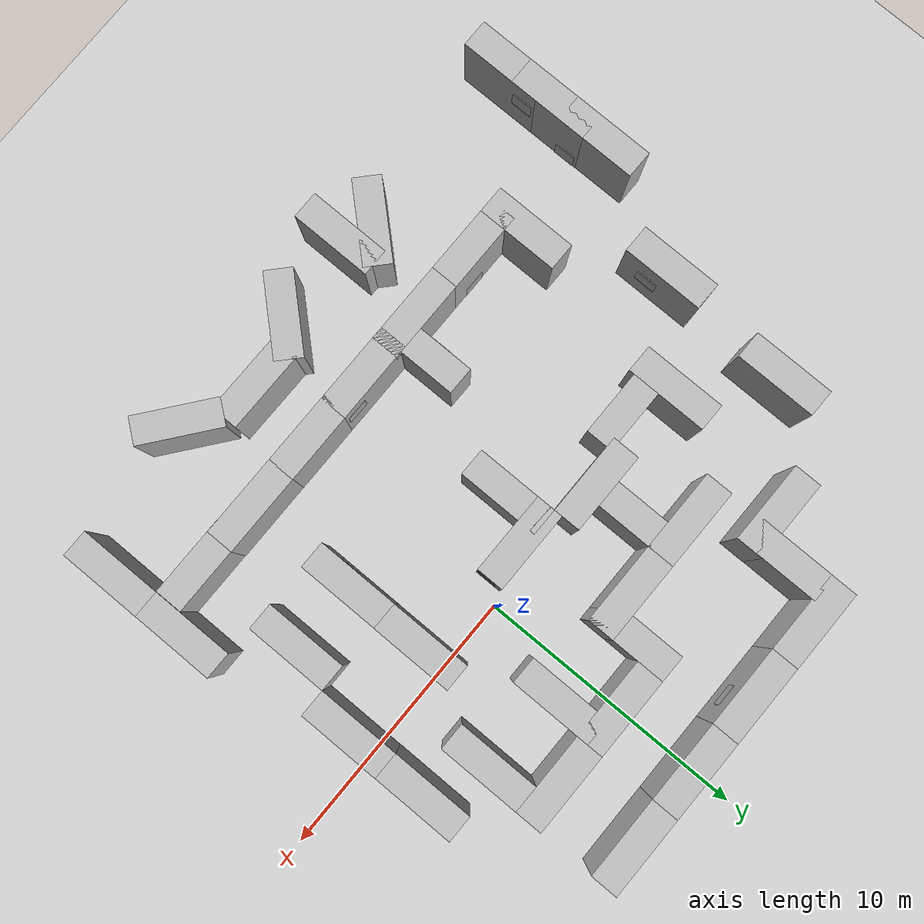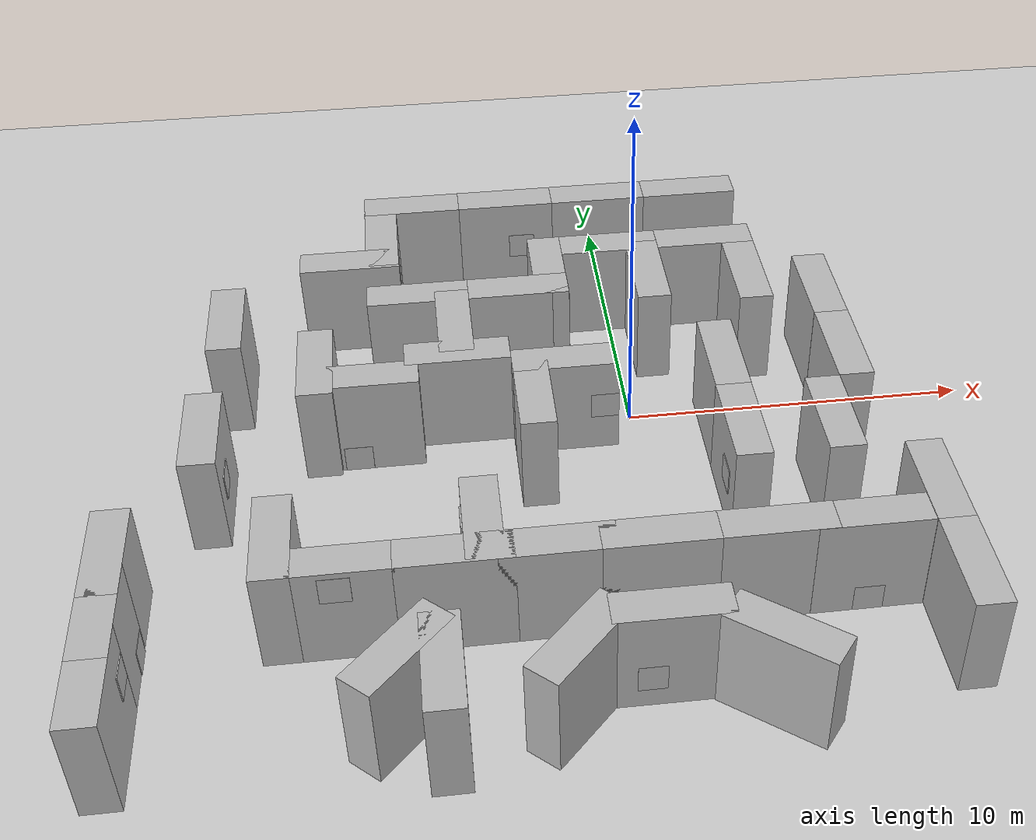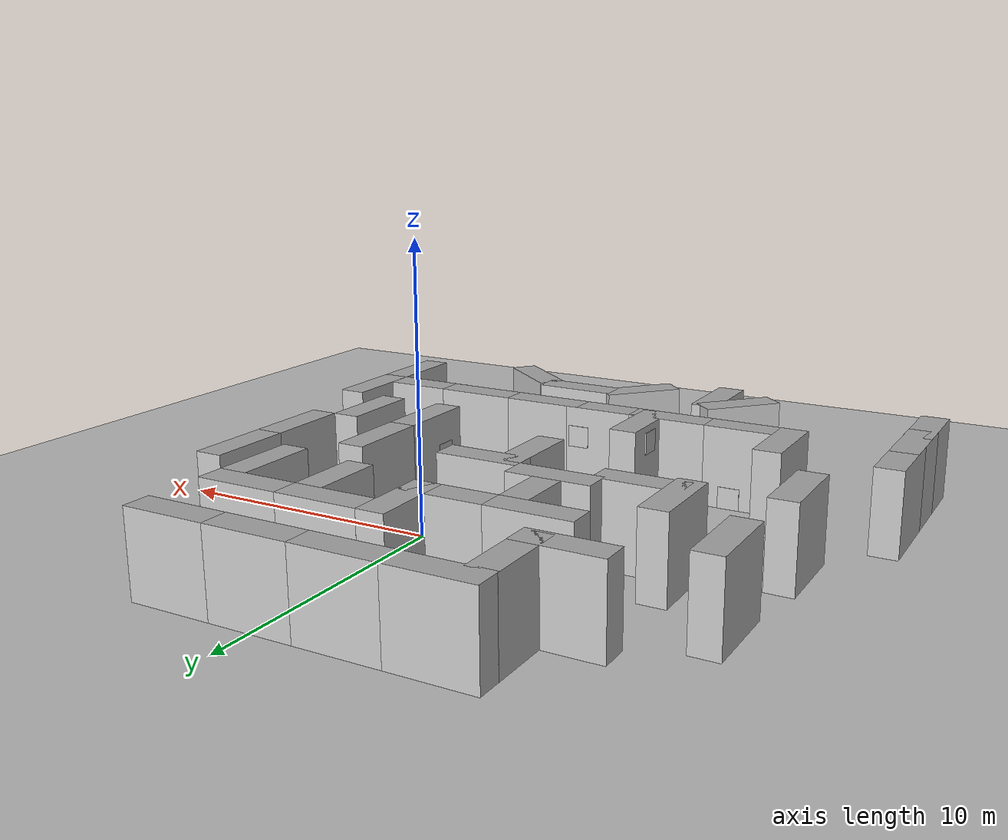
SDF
<sdf version="1.5">
 <world name="default">
  <model name="ground_plane">
   <static>1</static>
   <link name="link">
    <collision name="collision">
     <geometry><plane><normal>0 0 1</normal><size>100 100</size></plane></geometry>
     <surface><friction><ode><mu>100</mu><mu2>50</mu2></ode></friction></surface>
    </collision>
    <visual name="visual">
     <cast_shadows>0</cast_shadows>
     <geometry><plane><normal>0 0 1</normal><size>100 100</size></plane></geometry>
     <material>
      <script><uri>file://media/materials/scripts/gazebo.material</uri><name>Gazebo/Grey</name></script>
     </material>
    </visual>
   </link>
  </model>
  <model name="brick_box_3x1x3_0">
   <static>1</static>
   <link name="chassis">
    <pose>0 0 1.5 0 -0 0</pose>
    <collision name="collision"><geometry><box><size>3 1 3</size></box></geometry></collision>
    <visual name="visual">
     <geometry><mesh><uri>model://brick_box_3x1x3/meshes/simple_box.dae</uri><scale>3 1 3</scale></mesh></geometry>
     <material>
      <script>
       <uri>model://brick_box_3x1x3/materials/scripts</uri>
       <uri>model://brick_box_3x1x3/materials/textures</uri>
       <name>BrickBox/Diffuse</name>
      </script>
     </material>
    </visual>
   </link>
   <pose>3 8 0 0 -0 0</pose>
  </model>
  <model name="brick_box_3x1x3_1">
   <static>1</static>
   <link name="chassis">
    <pose>0 0 1.5 0 -0 0</pose>
    <collision name="collision"><geometry><box><size>3 1 3</size></box></geometry></collision>
    <visual name="visual">
     <geometry><mesh><uri>model://brick_box_3x1x3/meshes/simple_box.dae</uri><scale>3 1 3</scale></mesh></geometry>
     <material>
      <script>
       <uri>model://brick_box_3x1x3/materials/scripts</uri>
       <uri>model://brick_box_3x1x3/materials/textures</uri>
       <name>BrickBox/Diffuse</name>
      </script>
     </material>
    </visual>
   </link>
   <pose>3 5 0 0 -0 0</pose>
  </model>
  <model name="brick_box_3x1x3_2">
   <static>1</static>
   <link name="chassis">
    <pose>0 0 1.5 0 -0 0</pose>
    <collision name="collision"><geometry><box><size>3 1 3</size></box></geometry></collision>
    <visual name="visual">
     <geometry><mesh><uri>model://brick_box_3x1x3/meshes/simple_box.dae</uri><scale>3 1 3</scale></mesh></geometry>
     <material>
      <script>
       <uri>model://brick_box_3x1x3/materials/scripts</uri>
       <uri>model://brick_box_3x1x3/materials/textures</uri>
       <name>BrickBox/Diffuse</name>
      </script>
     </material>
    </visual>
   </link>
   <pose>0 5 0 0 -0 0</pose>
  </model>
  <model name="brick_box_3x1x3_3">
   <static>1</static>
   <link name="chassis">
    <pose>0 0 1.5 0 -0 0</pose>
    <collision name="collision"><geometry><box><size>3 1 3</size></box></geometry></collision>
    <visual name="visual">
     <geometry><mesh><uri>model://brick_box_3x1x3/meshes/simple_box.dae</uri><scale>3 1 3</scale></mesh></geometry>
     <material>
      <script>
       <uri>model://brick_box_3x1x3/materials/scripts</uri>
       <uri>model://brick_box_3x1x3/materials/textures</uri>
       <name>BrickBox/Diffuse</name>
      </script>
     </material>
    </visual>
   </link>
   <pose>0 8 0 0 -0 0</pose>
  </model>
  <model name="brick_box_3x1x3_4">
   <static>1</static>
   <link name="chassis">
    <pose>0 0 1.5 0 -0 0</pose>
    <collision name="collision"><geometry><box><size>3 1 3</size></box></geometry></collision>
    <visual name="visual">
     <geometry><mesh><uri>model://brick_box_3x1x3/meshes/simple_box.dae</uri><scale>3 1 3</scale></mesh></geometry>
     <material>
      <script>
       <uri>model://brick_box_3x1x3/materials/scripts</uri>
       <uri>model://brick_box_3x1x3/materials/textures</uri>
       <name>BrickBox/Diffuse</name>
      </script>
     </material>
    </visual>
   </link>
   <pose>-3 8 0 0 -0 0</pose>
  </model>
  <model name="brick_box_3x1x3_5">
   <static>1</static>
   <link name="chassis">
    <pose>0 0 1.5 0 -0 0</pose>
    <collision name="collision"><geometry><box><size>3 1 3</size></box></geometry></collision>
    <visual name="visual">
     <geometry><mesh><uri>model://brick_box_3x1x3/meshes/simple_box.dae</uri><scale>3 1 3</scale></mesh></geometry>
     <material>
      <script>
       <uri>model://brick_box_3x1x3/materials/scripts</uri>
       <uri>model://brick_box_3x1x3/materials/textures</uri>
       <name>BrickBox/Diffuse</name>
      </script>
     </material>
    </visual>
   </link>
   <pose>-6 8 0 0 -0 0</pose>
  </model>
  <model name="brick_box_3x1x3_6">
   <static>1</static>
   <link name="chassis">
    <pose>0 0 1.5 0 -0 0</pose>
    <collision name="collision"><geometry><box><size>3 1 3</size></box></geometry></collision>
    <visual name="visual">
     <geometry><mesh><uri>model://brick_box_3x1x3/meshes/simple_box.dae</uri><scale>3 1 3</scale></mesh></geometry>
     <material>
      <script>
       <uri>model://brick_box_3x1x3/materials/scripts</uri>
       <uri>model://brick_box_3x1x3/materials/textures</uri>
       <name>BrickBox/Diffuse</name>
      </script>
     </material>
    </visual>
   </link>
   <pose>-7.00719 6.10957 0 0 -0 1.56927</pose>
  </model>
  <model name="brick_box_3x1x3_6_clone">
   <static>1</static>
   <link name="chassis">
    <pose>0 0 1.5 0 -0 0</pose>
    <collision name="collision"><geometry><box><size>3 1 3</size></box></geometry></collision>
    <visual name="visual">
     <geometry><mesh><uri>model://brick_box_3x1x3/meshes/simple_box.dae</uri><scale>3 1 3</scale></mesh></geometry>
     <material>
      <script>
       <uri>model://brick_box_3x1x3/materials/scripts</uri>
       <uri>model://brick_box_3x1x3/materials/textures</uri>
       <name>BrickBox/Diffuse</name>
      </script>
     </material>
    </visual>
   </link>
   <pose>-2 4 0 0 -0 1.56927</pose>
  </model>
  <model name="brick_box_3x1x3_4_clone">
   <static>1</static>
   <link name="chassis">
    <pose>0 0 1.5 0 -0 0</pose>
    <collision name="collision"><geometry><box><size>3 1 3</size></box></geometry></collision>
    <visual name="visual">
     <geometry><mesh><uri>model://brick_box_3x1x3/meshes/simple_box.dae</uri><scale>3 1 3</scale></mesh></geometry>
     <material>
      <script>
       <uri>model://brick_box_3x1x3/materials/scripts</uri>
       <uri>model://brick_box_3x1x3/materials/textures</uri>
       <name>BrickBox/Diffuse</name>
      </script>
     </material>
    </visual>
   </link>
   <pose>-3 3 0 0 -0 0</pose>
  </model>
  <model name="brick_box_3x1x3_4_clone_clone">
   <static>1</static>
   <link name="chassis">
    <pose>0 0 1.5 0 -0 0</pose>
    <collision name="collision"><geometry><box><size>3 1 3</size></box></geometry></collision>
    <visual name="visual">
     <geometry><mesh><uri>model://brick_box_3x1x3/meshes/simple_box.dae</uri><scale>3 1 3</scale></mesh></geometry>
     <material>
      <script>
       <uri>model://brick_box_3x1x3/materials/scripts</uri>
       <uri>model://brick_box_3x1x3/materials/textures</uri>
       <name>BrickBox/Diffuse</name>
      </script>
     </material>
    </visual>
   </link>
   <pose>-8 5 0 0 -0 0</pose>
  </model>
  <model name="brick_box_3x1x3_4_clone_clone_0">
   <static>1</static>
   <link name="chassis">
    <pose>0 0 1.5 0 -0 0</pose>
    <collision name="collision"><geometry><box><size>3 1 3</size></box></geometry></collision>
    <visual name="visual">
     <geometry><mesh><uri>model://brick_box_3x1x3/meshes/simple_box.dae</uri><scale>3 1 3</scale></mesh></geometry>
     <material>
      <script>
       <uri>model://brick_box_3x1x3/materials/scripts</uri>
       <uri>model://brick_box_3x1x3/materials/textures</uri>
       <name>BrickBox/Diffuse</name>
      </script>
     </material>
    </visual>
   </link>
   <pose>-6 3 0 0 -0 0</pose>
  </model>
  <model name="brick_box_3x1x3_1_clone">
   <static>1</static>
   <link name="chassis">
    <pose>0 0 1.5 0 -0 0</pose>
    <collision name="collision"><geometry><box><size>3 1 3</size></box></geometry></collision>
    <visual name="visual">
     <geometry><mesh><uri>model://brick_box_3x1x3/meshes/simple_box.dae</uri><scale>3 1 3</scale></mesh></geometry>
     <material>
      <script>
       <uri>model://brick_box_3x1x3/materials/scripts</uri>
       <uri>model://brick_box_3x1x3/materials/textures</uri>
       <name>BrickBox/Diffuse</name>
      </script>
     </material>
    </visual>
   </link>
   <pose>-7.61871 -0.795439 0 0 -0 0</pose>
  </model>
  <model name="brick_box_3x1x3_1_clone_clone">
   <static>1</static>
   <link name="chassis">
    <pose>0 0 1.5 0 -0 0</pose>
    <collision name="collision"><geometry><box><size>3 1 3</size></box></geometry></collision>
    <visual name="visual">
     <geometry><mesh><uri>model://brick_box_3x1x3/meshes/simple_box.dae</uri><scale>3 1 3</scale></mesh></geometry>
     <material>
      <script>
       <uri>model://brick_box_3x1x3/materials/scripts</uri>
       <uri>model://brick_box_3x1x3/materials/textures</uri>
       <name>BrickBox/Diffuse</name>
      </script>
     </material>
    </visual>
   </link>
   <pose>-5 0 0 0 -0 0</pose>
  </model>
  <model name="brick_box_3x1x3_1_clone_clone_clone">
   <static>1</static>
   <link name="chassis">
    <pose>0 0 1.5 0 -0 0</pose>
    <collision name="collision"><geometry><box><size>3 1 3</size></box></geometry></collision>
    <visual name="visual">
     <geometry><mesh><uri>model://brick_box_3x1x3/meshes/simple_box.dae</uri><scale>3 1 3</scale></mesh></geometry>
     <material>
      <script>
       <uri>model://brick_box_3x1x3/materials/scripts</uri>
       <uri>model://brick_box_3x1x3/materials/textures</uri>
       <name>BrickBox/Diffuse</name>
      </script>
     </material>
    </visual>
   </link>
   <pose>-2 -0.680933 0 0 -0 0</pose>
  </model>
  <model name="brick_box_3x1x3_6_clone_0">
   <static>1</static>
   <link name="chassis">
    <pose>0 0 1.5 0 -0 0</pose>
    <collision name="collision"><geometry><box><size>3 1 3</size></box></geometry></collision>
    <visual name="visual">
     <geometry><mesh><uri>model://brick_box_3x1x3/meshes/simple_box.dae</uri><scale>3 1 3</scale></mesh></geometry>
     <material>
      <script>
       <uri>model://brick_box_3x1x3/materials/scripts</uri>
       <uri>model://brick_box_3x1x3/materials/textures</uri>
       <name>BrickBox/Diffuse</name>
      </script>
     </material>
    </visual>
   </link>
   <pose>-5 1.49506 0 0 -0 1.56927</pose>
  </model>
  <model name="brick_box_3x1x3_6_clone_0_clone">
   <static>1</static>
   <link name="chassis">
    <pose>0 0 1.5 0 -0 0</pose>
    <collision name="collision"><geometry><box><size>3 1 3</size></box></geometry></collision>
    <visual name="visual">
     <geometry><mesh><uri>model://brick_box_3x1x3/meshes/simple_box.dae</uri><scale>3 1 3</scale></mesh></geometry>
     <material>
      <script>
       <uri>model://brick_box_3x1x3/materials/scripts</uri>
       <uri>model://brick_box_3x1x3/materials/textures</uri>
       <name>BrickBox/Diffuse</name>
      </script>
     </material>
    </visual>
   </link>
   <pose>1 3.42288 0 0 -0 1.56927</pose>
  </model>
  <model name="brick_box_3x1x3_6_clone_1">
   <static>1</static>
   <link name="chassis">
    <pose>0 0 1.5 0 -0 0</pose>
    <collision name="collision"><geometry><box><size>3 1 3</size></box></geometry></collision>
    <visual name="visual">
     <geometry><mesh><uri>model://brick_box_3x1x3/meshes/simple_box.dae</uri><scale>3 1 3</scale></mesh></geometry>
     <material>
      <script>
       <uri>model://brick_box_3x1x3/materials/scripts</uri>
       <uri>model://brick_box_3x1x3/materials/textures</uri>
       <name>BrickBox/Diffuse</name>
      </script>
     </material>
    </visual>
   </link>
   <pose>-9 0 0 0 -0 1.56927</pose>
  </model>
  <model name="brick_box_3x1x3_6_clone_2">
   <static>1</static>
   <link name="chassis">
    <pose>0 0 1.5 0 -0 0</pose>
    <collision name="collision"><geometry><box><size>3 1 3</size></box></geometry></collision>
    <visual name="visual">
     <geometry><mesh><uri>model://brick_box_3x1x3/meshes/simple_box.dae</uri><scale>3 1 3</scale></mesh></geometry>
     <material>
      <script>
       <uri>model://brick_box_3x1x3/materials/scripts</uri>
       <uri>model://brick_box_3x1x3/materials/textures</uri>
       <name>BrickBox/Diffuse</name>
      </script>
     </material>
    </visual>
   </link>
   <pose>4 3 0 0 -0 1.56927</pose>
  </model>
  <model name="brick_box_3x1x3_1_clone_clone_clone_clone_clone">
   <static>1</static>
   <link name="chassis">
    <pose>0 0 1.5 0 -0 0</pose>
    <collision name="collision"><geometry><box><size>3 1 3</size></box></geometry></collision>
    <visual name="visual">
     <geometry><mesh><uri>model://brick_box_3x1x3/meshes/simple_box.dae</uri><scale>3 1 3</scale></mesh></geometry>
     <material>
      <script>
       <uri>model://brick_box_3x1x3/materials/scripts</uri>
       <uri>model://brick_box_3x1x3/materials/textures</uri>
       <name>BrickBox/Diffuse</name>
      </script>
     </material>
    </visual>
   </link>
   <pose>-8.49587 -8 0 0 -0 0</pose>
  </model>
  <model name="brick_box_3x1x3_1_clone_clone_clone_clone_clone_0">
   <static>1</static>
   <link name="chassis">
    <pose>0 0 1.5 0 -0 0</pose>
    <collision name="collision"><geometry><box><size>3 1 3</size></box></geometry></collision>
    <visual name="visual">
     <geometry><mesh><uri>model://brick_box_3x1x3/meshes/simple_box.dae</uri><scale>3 1 3</scale></mesh></geometry>
     <material>
      <script>
       <uri>model://brick_box_3x1x3/materials/scripts</uri>
       <uri>model://brick_box_3x1x3/materials/textures</uri>
       <name>BrickBox/Diffuse</name>
      </script>
     </material>
    </visual>
   </link>
   <pose>-5.55806 -8 0 0 -0 0</pose>
  </model>
  <model name="brick_box_3x1x3_1_clone_clone_clone_clone_clone_1">
   <static>1</static>
   <link name="chassis">
    <pose>0 0 1.5 0 -0 0</pose>
    <collision name="collision"><geometry><box><size>3 1 3</size></box></geometry></collision>
    <visual name="visual">
     <geometry><mesh><uri>model://brick_box_3x1x3/meshes/simple_box.dae</uri><scale>3 1 3</scale></mesh></geometry>
     <material>
      <script>
       <uri>model://brick_box_3x1x3/materials/scripts</uri>
       <uri>model://brick_box_3x1x3/materials/textures</uri>
       <name>BrickBox/Diffuse</name>
      </script>
     </material>
    </visual>
   </link>
   <pose>-3 -8 0 0 -0 0</pose>
  </model>
  <model name="brick_box_3x1x3_1_clone_clone_clone_clone_clone_2">
   <static>1</static>
   <link name="chassis">
    <pose>0 0 1.5 0 -0 0</pose>
    <collision name="collision"><geometry><box><size>3 1 3</size></box></geometry></collision>
    <visual name="visual">
     <geometry><mesh><uri>model://brick_box_3x1x3/meshes/simple_box.dae</uri><scale>3 1 3</scale></mesh></geometry>
     <material>
      <script>
       <uri>model://brick_box_3x1x3/materials/scripts</uri>
       <uri>model://brick_box_3x1x3/materials/textures</uri>
       <name>BrickBox/Diffuse</name>
      </script>
     </material>
    </visual>
   </link>
   <pose>-0.433734 -8 0 0 -0 0</pose>
  </model>
  <model name="brick_box_3x1x3_1_clone_clone_clone_clone_clone_3">
   <static>1</static>
   <link name="chassis">
    <pose>0 0 1.5 0 -0 0</pose>
    <collision name="collision"><geometry><box><size>3 1 3</size></box></geometry></collision>
    <visual name="visual">
     <geometry><mesh><uri>model://brick_box_3x1x3/meshes/simple_box.dae</uri><scale>3 1 3</scale></mesh></geometry>
     <material>
      <script>
       <uri>model://brick_box_3x1x3/materials/scripts</uri>
       <uri>model://brick_box_3x1x3/materials/textures</uri>
       <name>BrickBox/Diffuse</name>
      </script>
     </material>
    </visual>
   </link>
   <pose>2.54551 -8 0 0 -0 0</pose>
  </model>
  <model name="brick_box_3x1x3_1_clone_clone_clone_clone_clone_4">
   <static>1</static>
   <link name="chassis">
    <pose>0 0 1.5 0 -0 0</pose>
    <collision name="collision"><geometry><box><size>3 1 3</size></box></geometry></collision>
    <visual name="visual">
     <geometry><mesh><uri>model://brick_box_3x1x3/meshes/simple_box.dae</uri><scale>3 1 3</scale></mesh></geometry>
     <material>
      <script>
       <uri>model://brick_box_3x1x3/materials/scripts</uri>
       <uri>model://brick_box_3x1x3/materials/textures</uri>
       <name>BrickBox/Diffuse</name>
      </script>
     </material>
    </visual>
   </link>
   <pose>4.98932 -8.01047 0 0 -0 0</pose>
  </model>
  <model name="brick_box_3x1x3_6_clone_0_clone_0">
   <static>1</static>
   <link name="chassis">
    <pose>0 0 1.5 0 -0 0</pose>
    <collision name="collision"><geometry><box><size>3 1 3</size></box></geometry></collision>
    <visual name="visual">
     <geometry><mesh><uri>model://brick_box_3x1x3/meshes/simple_box.dae</uri><scale>3 1 3</scale></mesh></geometry>
     <material>
      <script>
       <uri>model://brick_box_3x1x3/materials/scripts</uri>
       <uri>model://brick_box_3x1x3/materials/textures</uri>
       <name>BrickBox/Diffuse</name>
      </script>
     </material>
    </visual>
   </link>
   <pose>-4.78193 -6.92335 0 0 -0 1.56927</pose>
  </model>
  <model name="brick_box_3x1x3_6_clone_0_clone_1">
   <static>1</static>
   <link name="chassis">
    <pose>0 0 1.5 0 -0 0</pose>
    <collision name="collision"><geometry><box><size>3 1 3</size></box></geometry></collision>
    <visual name="visual">
     <geometry><mesh><uri>model://brick_box_3x1x3/meshes/simple_box.dae</uri><scale>3 1 3</scale></mesh></geometry>
     <material>
      <script>
       <uri>model://brick_box_3x1x3/materials/scripts</uri>
       <uri>model://brick_box_3x1x3/materials/textures</uri>
       <name>BrickBox/Diffuse</name>
      </script>
     </material>
    </visual>
   </link>
   <pose>-3 -2 0 0 -0 1.56927</pose>
  </model>
  <model name="brick_box_3x1x3_6_clone_0_clone_2">
   <static>1</static>
   <link name="chassis">
    <pose>0 0 1.5 0 -0 0</pose>
    <collision name="collision"><geometry><box><size>3 1 3</size></box></geometry></collision>
    <visual name="visual">
     <geometry><mesh><uri>model://brick_box_3x1x3/meshes/simple_box.dae</uri><scale>3 1 3</scale></mesh></geometry>
     <material>
      <script>
       <uri>model://brick_box_3x1x3/materials/scripts</uri>
       <uri>model://brick_box_3x1x3/materials/textures</uri>
       <name>BrickBox/Diffuse</name>
      </script>
     </material>
    </visual>
   </link>
   <pose>2.50019 -1 0 0 -0 1.56927</pose>
  </model>
  <model name="brick_box_3x1x3_6_clone_0_clone_3">
   <static>1</static>
   <link name="chassis">
    <pose>0 0 1.5 0 -0 0</pose>
    <collision name="collision"><geometry><box><size>3 1 3</size></box></geometry></collision>
    <visual name="visual">
     <geometry><mesh><uri>model://brick_box_3x1x3/meshes/simple_box.dae</uri><scale>3 1 3</scale></mesh></geometry>
     <material>
      <script>
       <uri>model://brick_box_3x1x3/materials/scripts</uri>
       <uri>model://brick_box_3x1x3/materials/textures</uri>
       <name>BrickBox/Diffuse</name>
      </script>
     </material>
    </visual>
   </link>
   <pose>2.48978 -4 0 0 -0 1.56927</pose>
  </model>
  <model name="brick_box_3x1x3_6_clone_0_clone_4">
   <static>1</static>
   <link name="chassis">
    <pose>0 0 1.5 0 -0 0</pose>
    <collision name="collision"><geometry><box><size>3 1 3</size></box></geometry></collision>
    <visual name="visual">
     <geometry><mesh><uri>model://brick_box_3x1x3/meshes/simple_box.dae</uri><scale>3 1 3</scale></mesh></geometry>
     <material>
      <script>
       <uri>model://brick_box_3x1x3/materials/scripts</uri>
       <uri>model://brick_box_3x1x3/materials/textures</uri>
       <name>BrickBox/Diffuse</name>
      </script>
     </material>
    </visual>
   </link>
   <pose>5 -4 0 0 -0 1.56927</pose>
  </model>
  <model name="brick_box_3x1x3_6_clone_0_clone_5">
   <static>1</static>
   <link name="chassis">
    <pose>0 0 1.5 0 -0 0</pose>
    <collision name="collision"><geometry><box><size>3 1 3</size></box></geometry></collision>
    <visual name="visual">
     <geometry><mesh><uri>model://brick_box_3x1x3/meshes/simple_box.dae</uri><scale>3 1 3</scale></mesh></geometry>
     <material>
      <script>
       <uri>model://brick_box_3x1x3/materials/scripts</uri>
       <uri>model://brick_box_3x1x3/materials/textures</uri>
       <name>BrickBox/Diffuse</name>
      </script>
     </material>
    </visual>
   </link>
   <pose>6 -1 0 0 -0 1.56927</pose>
  </model>
  <model name="brick_box_3x1x3_6_clone_0_clone_6">
   <static>1</static>
   <link name="chassis">
    <pose>0 0 1.5 0 -0 0</pose>
    <collision name="collision"><geometry><box><size>3 1 3</size></box></geometry></collision>
    <visual name="visual">
     <geometry><mesh><uri>model://brick_box_3x1x3/meshes/simple_box.dae</uri><scale>3 1 3</scale></mesh></geometry>
     <material>
      <script>
       <uri>model://brick_box_3x1x3/materials/scripts</uri>
       <uri>model://brick_box_3x1x3/materials/textures</uri>
       <name>BrickBox/Diffuse</name>
      </script>
     </material>
    </visual>
   </link>
   <pose>6 2 0 0 -0 1.56927</pose>
  </model>
  <model name="brick_box_3x1x3_6_clone_0_clone_6_clone">
   <static>1</static>
   <link name="chassis">
    <pose>0 0 1.5 0 -0 0</pose>
    <collision name="collision"><geometry><box><size>3 1 3</size></box></geometry></collision>
    <visual name="visual">
     <geometry><mesh><uri>model://brick_box_3x1x3/meshes/simple_box.dae</uri><scale>3 1 3</scale></mesh></geometry>
     <material>
      <script>
       <uri>model://brick_box_3x1x3/materials/scripts</uri>
       <uri>model://brick_box_3x1x3/materials/textures</uri>
       <name>BrickBox/Diffuse</name>
      </script>
     </material>
    </visual>
   </link>
   <pose>7 -7 0 0 -0 1.56927</pose>
  </model>
  <model name="brick_box_3x1x3_6_clone_0_clone_6_clone_clone">
   <static>1</static>
   <link name="chassis">
    <pose>0 0 1.5 0 -0 0</pose>
    <collision name="collision"><geometry><box><size>3 1 3</size></box></geometry></collision>
    <visual name="visual">
     <geometry><mesh><uri>model://brick_box_3x1x3/meshes/simple_box.dae</uri><scale>3 1 3</scale></mesh></geometry>
     <material>
      <script>
       <uri>model://brick_box_3x1x3/materials/scripts</uri>
       <uri>model://brick_box_3x1x3/materials/textures</uri>
       <name>BrickBox/Diffuse</name>
      </script>
     </material>
    </visual>
   </link>
   <pose>-10 -7 0 0 -0 1.56927</pose>
  </model>
  <model name="brick_box_3x1x3_6_clone_0_clone_6_clone_clone_0">
   <static>1</static>
   <link name="chassis">
    <pose>0 0 1.5 0 -0 0</pose>
    <collision name="collision"><geometry><box><size>3 1 3</size></box></geometry></collision>
    <visual name="visual">
     <geometry><mesh><uri>model://brick_box_3x1x3/meshes/simple_box.dae</uri><scale>3 1 3</scale></mesh></geometry>
     <material>
      <script>
       <uri>model://brick_box_3x1x3/materials/scripts</uri>
       <uri>model://brick_box_3x1x3/materials/textures</uri>
       <name>BrickBox/Diffuse</name>
      </script>
     </material>
    </visual>
   </link>
   <pose>-12 -2.55136 0 0 -0 1.56927</pose>
  </model>
  <model name="brick_box_3x1x3_6_clone_0_clone_6_clone_clone_0_clone">
   <static>1</static>
   <link name="chassis">
    <pose>0 0 1.5 0 -0 0</pose>
    <collision name="collision"><geometry><box><size>3 1 3</size></box></geometry></collision>
    <visual name="visual">
     <geometry><mesh><uri>model://brick_box_3x1x3/meshes/simple_box.dae</uri><scale>3 1 3</scale></mesh></geometry>
     <material>
      <script>
       <uri>model://brick_box_3x1x3/materials/scripts</uri>
       <uri>model://brick_box_3x1x3/materials/textures</uri>
       <name>BrickBox/Diffuse</name>
      </script>
     </material>
    </visual>
   </link>
   <pose>-11.5925 2.40821 0 0 -0 1.56927</pose>
  </model>
  <model name="brick_box_3x1x3_6_clone_0_clone_6_clone_clone_0_clone_0">
   <static>1</static>
   <link name="chassis">
    <pose>0 0 1.5 0 -0 0</pose>
    <collision name="collision"><geometry><box><size>3 1 3</size></box></geometry></collision>
    <visual name="visual">
     <geometry><mesh><uri>model://brick_box_3x1x3/meshes/simple_box.dae</uri><scale>3 1 3</scale></mesh></geometry>
     <material>
      <script>
       <uri>model://brick_box_3x1x3/materials/scripts</uri>
       <uri>model://brick_box_3x1x3/materials/textures</uri>
       <name>BrickBox/Diffuse</name>
      </script>
     </material>
    </visual>
   </link>
   <pose>-2.81968 -11.2135 -0 0 -0 0.824357</pose>
  </model>
  <model name="brick_box_3x1x3_6_clone_0_clone_6_clone_clone_0_clone_0_clone_clone_0">
   <static>1</static>
   <link name="chassis">
    <pose>0 0 1.5 0 -0 0</pose>
    <collision name="collision"><geometry><box><size>3 1 3</size></box></geometry></collision>
    <visual name="visual">
     <geometry><mesh><uri>model://brick_box_3x1x3/meshes/simple_box.dae</uri><scale>3 1 3</scale></mesh></geometry>
     <material>
      <script>
       <uri>model://brick_box_3x1x3/materials/scripts</uri>
       <uri>model://brick_box_3x1x3/materials/textures</uri>
       <name>BrickBox/Diffuse</name>
      </script>
     </material>
    </visual>
   </link>
   <pose>-0.541851 -10.4768 0 0 0 -0.007092</pose>
  </model>
  <model name="brick_box_3x1x3_6_clone_0_clone_6_clone_clone_0_clone_0_clone_clone_2">
   <static>1</static>
   <link name="chassis">
    <pose>0 0 1.5 0 -0 0</pose>
    <collision name="collision"><geometry><box><size>3 1 3</size></box></geometry></collision>
    <visual name="visual">
     <geometry><mesh><uri>model://brick_box_3x1x3/meshes/simple_box.dae</uri><scale>3 1 3</scale></mesh></geometry>
     <material>
      <script>
       <uri>model://brick_box_3x1x3/materials/scripts</uri>
       <uri>model://brick_box_3x1x3/materials/textures</uri>
       <name>BrickBox/Diffuse</name>
      </script>
     </material>
    </visual>
   </link>
   <pose>2 -11.5506 -0 0 -0 2.47586</pose>
  </model>
  <model name="brick_box_3x1x3_6_clone_0_clone_6_clone_clone_0_clone_0_clone_clone_1_clone_1">
   <static>1</static>
   <link name="chassis">
    <pose>0 0 1.5 0 -0 0</pose>
    <collision name="collision"><geometry><box><size>3 1 3</size></box></geometry></collision>
    <visual name="visual">
     <geometry><mesh><uri>model://brick_box_3x1x3/meshes/simple_box.dae</uri><scale>3 1 3</scale></mesh></geometry>
     <material>
      <script>
       <uri>model://brick_box_3x1x3/materials/scripts</uri>
       <uri>model://brick_box_3x1x3/materials/textures</uri>
       <name>BrickBox/Diffuse</name>
      </script>
     </material>
    </visual>
   </link>
   <pose>-6 -11.5224 0 0 -0 1.56927</pose>
  </model>
  <model name="brick_box_3x1x3_6_clone_0_clone_6_clone_clone_0_clone_0_clone_0">
   <static>1</static>
   <link name="chassis">
    <pose>0 0 1.5 0 -0 0</pose>
    <collision name="collision"><geometry><box><size>3 1 3</size></box></geometry></collision>
    <visual name="visual">
     <geometry><mesh><uri>model://brick_box_3x1x3/meshes/simple_box.dae</uri><scale>3 1 3</scale></mesh></geometry>
     <material>
      <script>
       <uri>model://brick_box_3x1x3/materials/scripts</uri>
       <uri>model://brick_box_3x1x3/materials/textures</uri>
       <name>BrickBox/Diffuse</name>
      </script>
     </material>
    </visual>
   </link>
   <pose>-7 -11 -0 0 -0 0.824357</pose>
  </model>
  <model name="brick_box_3x1x3_6_clone_0_clone_6_clone_clone_0_clone_0_clone_clone_1_clone_clone">
   <static>1</static>
   <link name="chassis">
    <pose>0 0 1.5 0 -0 0</pose>
    <collision name="collision"><geometry><box><size>3 1 3</size></box></geometry></collision>
    <visual name="visual">
     <geometry><mesh><uri>model://brick_box_3x1x3/meshes/simple_box.dae</uri><scale>3 1 3</scale></mesh></geometry>
     <material>
      <script>
       <uri>model://brick_box_3x1x3/materials/scripts</uri>
       <uri>model://brick_box_3x1x3/materials/textures</uri>
       <name>BrickBox/Diffuse</name>
      </script>
     </material>
    </visual>
   </link>
   <pose>-14 -7 0 0 -0 1.56927</pose>
  </model>
  <model name="brick_box_3x1x3_6_clone_0_clone_6_clone_clone_0_clone_0_clone_clone_1_clone_clone_clone">
   <static>1</static>
   <link name="chassis">
    <pose>0 0 1.5 0 -0 0</pose>
    <collision name="collision"><geometry><box><size>3 1 3</size></box></geometry></collision>
    <visual name="visual">
     <geometry><mesh><uri>model://brick_box_3x1x3/meshes/simple_box.dae</uri><scale>3 1 3</scale></mesh></geometry>
     <material>
      <script>
       <uri>model://brick_box_3x1x3/materials/scripts</uri>
       <uri>model://brick_box_3x1x3/materials/textures</uri>
       <name>BrickBox/Diffuse</name>
      </script>
     </material>
    </visual>
   </link>
   <pose>-14 -9 0 0 -0 1.56927</pose>
  </model>
  <model name="brick_box_3x1x3_6_clone_0_clone_6_clone_clone_0_clone_0_clone_clone_1_clone_clone_clone_0">
   <static>1</static>
   <link name="chassis">
    <pose>0 0 1.5 0 -0 0</pose>
    <collision name="collision"><geometry><box><size>3 1 3</size></box></geometry></collision>
    <visual name="visual">
     <geometry><mesh><uri>model://brick_box_3x1x3/meshes/simple_box.dae</uri><scale>3 1 3</scale></mesh></geometry>
     <material>
      <script>
       <uri>model://brick_box_3x1x3/materials/scripts</uri>
       <uri>model://brick_box_3x1x3/materials/textures</uri>
       <name>BrickBox/Diffuse</name>
      </script>
     </material>
    </visual>
   </link>
   <pose>-14 -11 0 0 -0 1.56927</pose>
  </model>
  <model name="brick_box_3x1x3_6_clone_0_clone_6_clone_clone_1">
   <static>1</static>
   <link name="chassis">
    <pose>0 0 1.5 0 -0 0</pose>
    <collision name="collision"><geometry><box><size>3 1 3</size></box></geometry></collision>
    <visual name="visual">
     <geometry><mesh><uri>model://brick_box_3x1x3/meshes/simple_box.dae</uri><scale>3 1 3</scale></mesh></geometry>
     <material>
      <script>
       <uri>model://brick_box_3x1x3/materials/scripts</uri>
       <uri>model://brick_box_3x1x3/materials/textures</uri>
       <name>BrickBox/Diffuse</name>
      </script>
     </material>
    </visual>
   </link>
   <pose>7 -10 0 0 -0 1.56927</pose>
  </model>
  <model name="number1">
   <pose>-2.52166 7.88952 1.4824 0 -0 0</pose>
   <static>1</static>
   <link name="link">
    <visual name="visual">
     <geometry><mesh><uri>model://number1/meshes/number.dae</uri></mesh></geometry>
     <material>
      <script>
       <uri>model://number1/materials/scripts</uri>
       <uri>model://number1/materials/textures</uri>
       <name>Number/One</name>
      </script>
     </material>
    </visual>
   </link>
  </model>
  <model name="number2">
   <pose>-0.899916 -0.782511 1.52178 0 -0 0</pose>
   <static>1</static>
   <link name="link">
    <visual name="visual">
     <geometry><mesh><uri>model://number1/meshes/number.dae</uri></mesh></geometry>
     <material>
      <script>
       <uri>model://number2/materials/scripts</uri>
       <uri>model://number2/materials/textures</uri>
       <name>Number/Two</name>
      </script>
     </material>
    </visual>
   </link>
  </model>
  <model name="number3">
   <pose>2.36326 -4.47947 1.46512 0 -0 0</pose>
   <static>1</static>
   <link name="link">
    <visual name="visual">
     <geometry><mesh><uri>model://number1/meshes/number.dae</uri></mesh></geometry>
     <material>
      <script>
       <uri>model://number3/materials/scripts</uri>
       <uri>model://number3/materials/textures</uri>
       <name>Number/Three</name>
      </script>
     </material>
    </visual>
   </link>
  </model>
  <model name="number4">
   <pose>-1 -8 0.4 0 -0 0</pose>
   <static>1</static>
   <link name="link">
    <visual name="visual">
     <geometry><mesh><uri>model://number1/meshes/number.dae</uri></mesh></geometry>
     <material>
      <script>
       <uri>model://number4/materials/scripts</uri>
       <uri>model://number4/materials/textures</uri>
       <name>Number/Four</name>
      </script>
     </material>
    </visual>
   </link>
  </model>
  <model name="number4_0">
   <pose>-2 -7.87886 1.87014 0 -0 0</pose>
   <static>1</static>
   <link name="link">
    <visual name="visual">
     <geometry><mesh><uri>model://number1/meshes/number.dae</uri></mesh></geometry>
     <material>
      <script>
       <uri>model://number4/materials/scripts</uri>
       <uri>model://number4/materials/textures</uri>
       <name>Number/Four</name>
      </script>
     </material>
    </visual>
   </link>
  </model>
  <model name="number5">
   <pose>-8 -7.88739 0.4 0 -0 0</pose>
   <static>1</static>
   <link name="link">
    <visual name="visual">
     <geometry><mesh><uri>model://number1/meshes/number.dae</uri></mesh></geometry>
     <material>
      <script>
       <uri>model://number5/materials/scripts</uri>
       <uri>model://number5/materials/textures</uri>
       <name>Number/Five</name>
      </script>
     </material>
    </visual>
   </link>
  </model>
  <model name="number7">
   <pose>-11.8767 -3 1.51871 0 -0 0</pose>
   <static>1</static>
   <link name="link">
    <visual name="visual">
     <geometry><mesh><uri>model://number1/meshes/number.dae</uri></mesh></geometry>
     <material>
      <script>
       <uri>model://number7/materials/scripts</uri>
       <uri>model://number7/materials/textures</uri>
       <name>Number/Seven</name>
      </script>
     </material>
    </visual>
   </link>
  </model>
  <model name="number9">
   <pose>-1 -10.576 0.963225 0 -0 0</pose>
   <static>1</static>
   <link name="link">
    <visual name="visual">
     <geometry><mesh><uri>model://number1/meshes/number.dae</uri></mesh></geometry>
     <material>
      <script>
       <uri>model://number9/materials/scripts</uri>
       <uri>model://number9/materials/textures</uri>
       <name>Number/Nine</name>
      </script>
     </material>
    </visual>
   </link>
  </model>
  <model name="number2_0">
   <pose>5 -8.11371 0.4 0 -0 0</pose>
   <static>1</static>
   <link name="link">
    <visual name="visual">
     <geometry><mesh><uri>model://number1/meshes/number.dae</uri></mesh></geometry>
     <material>
      <script>
       <uri>model://number2/materials/scripts</uri>
       <uri>model://number2/materials/textures</uri>
       <name>Number/Two</name>
      </script>
     </material>
    </visual>
   </link>
  </model>
  <model name="number3_2">
   <pose>-13.8709 -10 1.74911 0 -0 0</pose>
   <static>1</static>
   <link name="link">
    <visual name="visual">
     <geometry><mesh><uri>model://number1/meshes/number.dae</uri></mesh></geometry>
     <material>
      <script>
       <uri>model://number3/materials/scripts</uri>
       <uri>model://number3/materials/textures</uri>
       <name>Number/Three</name>
      </script>
     </material>
    </visual>
   </link>
  </model>
  <model name="number8_2">
   <pose>-13.8807 -8.01194 0.4 0 -0 0</pose>
   <static>1</static>
   <link name="link">
    <visual name="visual">
     <geometry><mesh><uri>model://number1/meshes/number.dae</uri></mesh></geometry>
     <material>
      <script>
       <uri>model://number8/materials/scripts</uri>
       <uri>model://number8/materials/textures</uri>
       <name>Number/Eight</name>
      </script>
     </material>
    </visual>
   </link>
  </model>
  <model name="number9_1">
   <pose>-8.48138 -8.11184 2.43051 0 -0 0</pose>
   <static>1</static>
   <link name="link">
    <visual name="visual">
     <geometry><mesh><uri>model://number1/meshes/number.dae</uri></mesh></geometry>
     <material>
      <script>
       <uri>model://number9/materials/scripts</uri>
       <uri>model://number9/materials/textures</uri>
       <name>Number/Nine</name>
      </script>
     </material>
    </visual>
   </link>
  </model>
  <model name="number3_3">
   <pose>-8 -0.903342 0.4 0 -0 0</pose>
   <static>1</static>
   <link name="link">
    <visual name="visual">
     <geometry><mesh><uri>model://number1/meshes/number.dae</uri></mesh></geometry>
     <material>
      <script>
       <uri>model://number3/materials/scripts</uri>
       <uri>model://number3/materials/textures</uri>
       <name>Number/Three</name>
      </script>
     </material>
    </visual>
   </link>
  </model>
  <model name="number2_2">
   <pose>-4.92677 -6.65294 2.357 0 -0 0</pose>
   <static>1</static>
   <link name="link">
    <visual name="visual">
     <geometry><mesh><uri>model://number1/meshes/number.dae</uri></mesh></geometry>
     <material>
      <script>
       <uri>model://number2/materials/scripts</uri>
       <uri>model://number2/materials/textures</uri>
       <name>Number/Two</name>
      </script>
     </material>
    </visual>
   </link>
  </model>
 </world>
</sdf>
